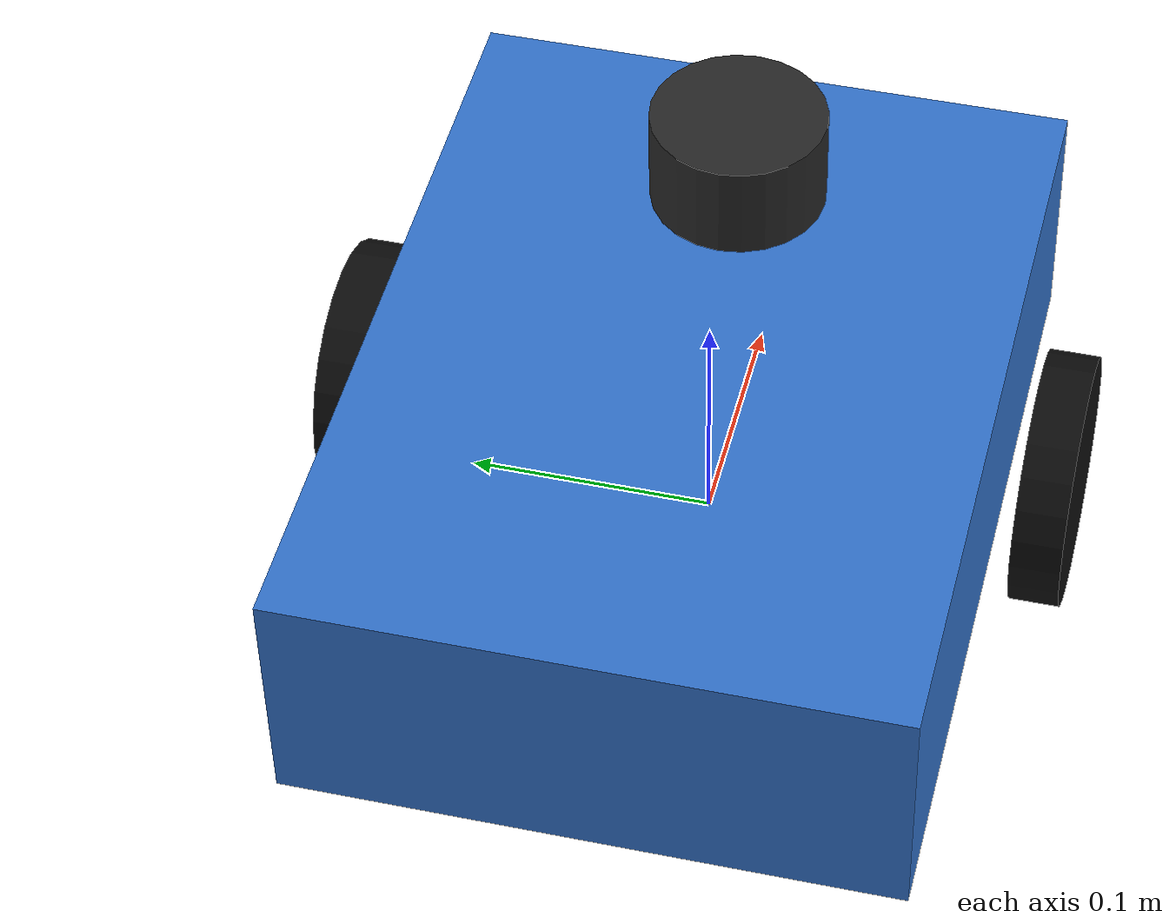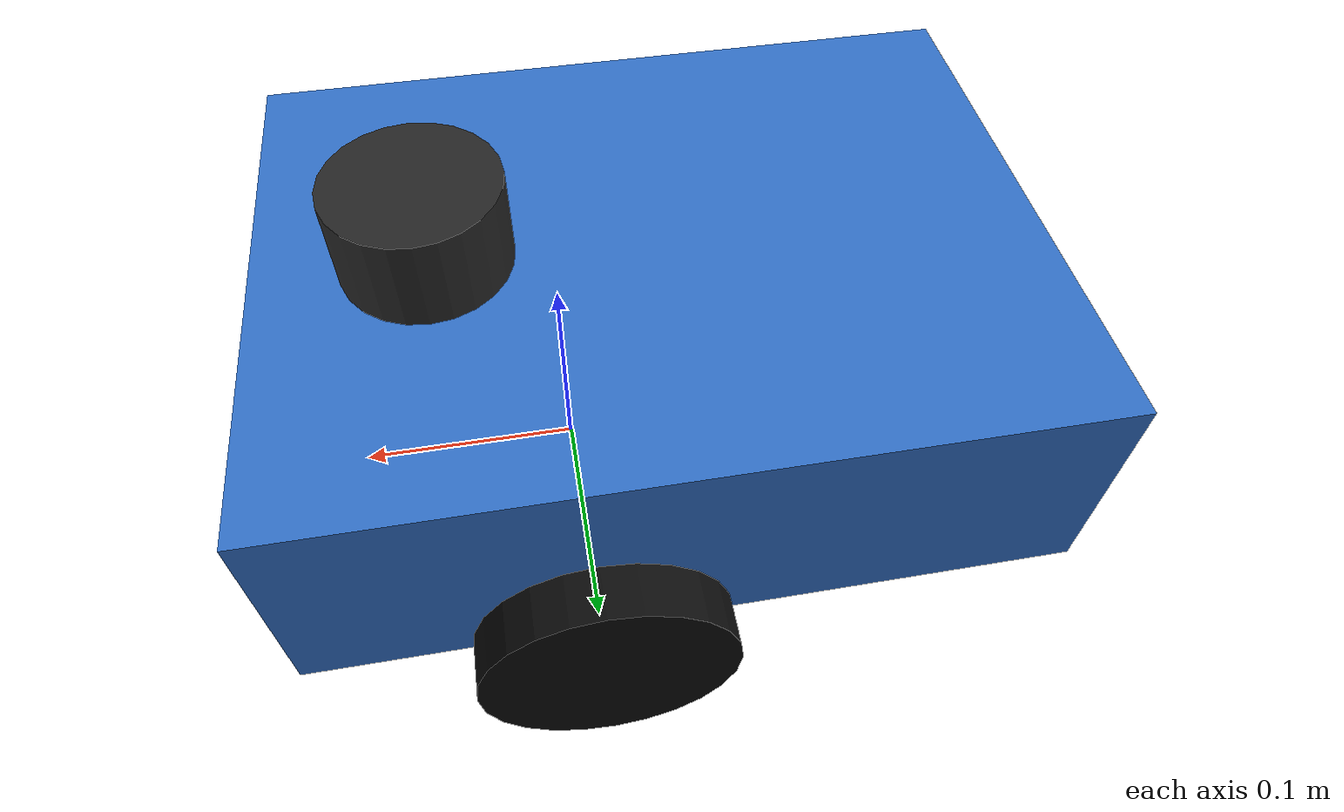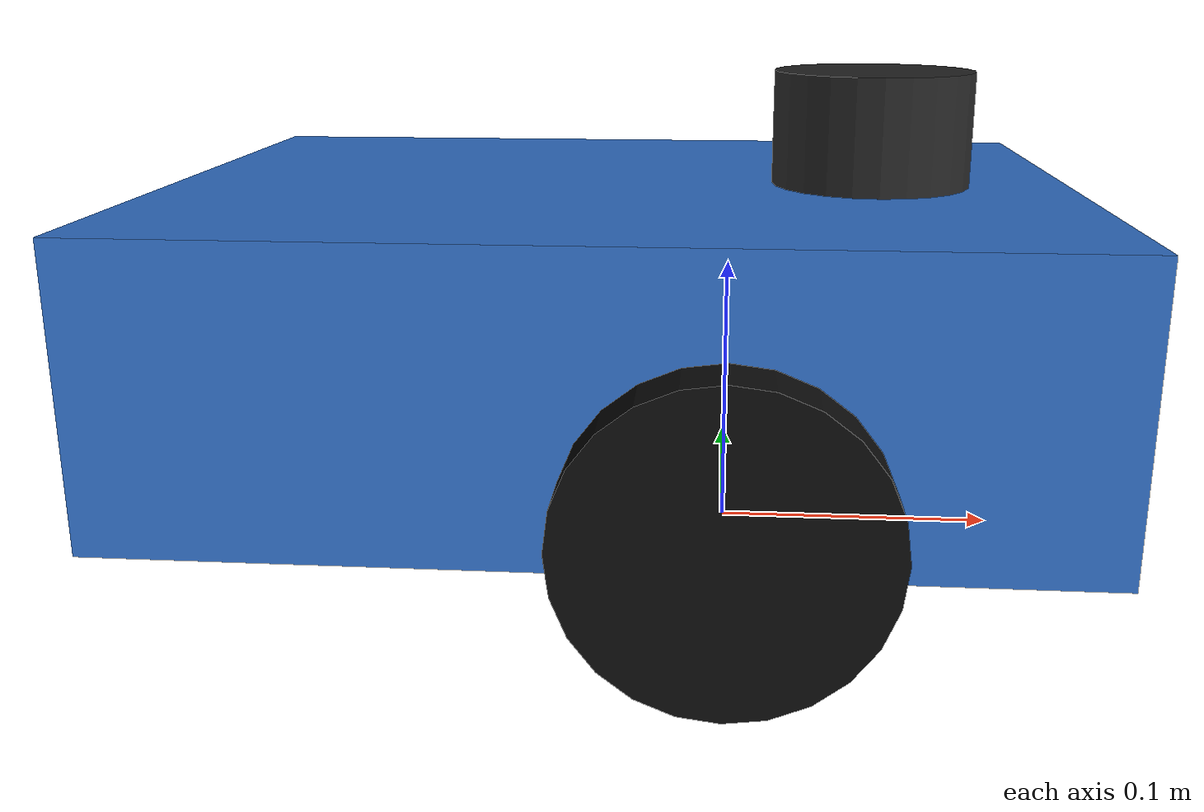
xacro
<?xml version="1.0"?>

<robot
  name="inspection_robot"
  xmlns:xacro="http://www.ros.org/wiki/xacro">

  <!-- 选择 ros2_control 后端：
       false = Mock GenericSystem
       true  = GazeboSystem -->
  <xacro:arg name="use_gazebo" default="false"/>
  <xacro:arg name="controllers_file" default=""/>

  <!-- 参数表 -->
  <xacro:include filename="robot_properties.xacro"/>

  <!-- 可复用组件宏 -->
  <xacro:include filename="base.xacro"/>
  <xacro:include filename="wheel.xacro"/>
  <xacro:include filename="caster.xacro"/>

  <xacro:include filename="sensors/laser.xacro"/>
  <xacro:include filename="sensors/imu.xacro"/>

  <!-- ros2_control 硬件与接口描述 -->
  <xacro:include filename="ros2_control.xacro"/>

  <!-- 创建底盘 -->
  <xacro:base
    length="${base_length}"
    width="${base_width}"
    height="${base_height}"
    mass="${base_mass}"
    base_link_z="${base_link_z}"
    chassis_x="${chassis_x}"
    chassis_z="${chassis_z}"
    com_x="${base_com_x}"
    com_z="${base_com_z}"/>

  <!-- 创建左轮：ROS 坐标系中 Y 正方向为左侧 -->
  <xacro:wheel
    side="left"
    radius="${wheel_radius}"
    width="${wheel_width}"
    mass="${wheel_mass}"
    x="${wheel_x}"
    y="${wheel_separation / 2.0}"
    z="${wheel_z}"/>

  <!-- 创建右轮：位于 Y 负方向 -->
  <xacro:wheel
    side="right"
    radius="${wheel_radius}"
    width="${wheel_width}"
    mass="${wheel_mass}"
    x="${wheel_x}"
    y="${-wheel_separation / 2.0}"
    z="${wheel_z}"/>

  <!-- 后部万向支撑球 -->
  <xacro:caster
    radius="${caster_radius}"
    mass="${caster_mass}"
    x="${caster_x}"
    y="${caster_y}"
    z="${caster_z}"/>

  <!-- 激光雷达 -->
  <xacro:laser
    x="${laser_x}"
    y="${laser_y}"
    z="${laser_z}"
    use_gazebo="$(arg use_gazebo)"/>

  <!-- IMU -->
  <xacro:imu
    x="${imu_x}"
    y="${imu_y}"
    z="${imu_z}"/>

  <!-- ros2_control -->
  <xacro:inspection_robot_ros2_control
    use_gazebo="$(arg use_gazebo)"
    controllers_file="$(arg controllers_file)"/>

</robot>

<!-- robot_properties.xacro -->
<robot xmlns:xacro="http://www.ros.org/wiki/xacro">

  <!-- 底盘外形尺寸 -->
  <xacro:property name="base_length" value="0.32"/>
  <xacro:property name="base_width"  value="0.24"/>
  <xacro:property name="base_height" value="0.10"/>
  <xacro:property name="base_mass"   value="4.0"/>

  <!--
    V2 坐标定义：
    base_link 位于左右驱动轮轴线中点，
        高度等于驱动轮半径。
  -->
  <xacro:property name="base_link_z" value="0.05"/>

  <!--
        底盘几何体相对于 base_link 的位置。
        底盘向后偏 4 cm；
        底部离地 3 cm，因此几何中心 z=0.03。
  -->
  <xacro:property name="chassis_x" value="-0.04"/>
  <xacro:property name="chassis_z" value="0.03"/>

  <!--
        简化的整机质心位置。
        重部件假设低位、略微偏后。
  -->
  <xacro:property name="base_com_x" value="-0.05"/>
  <xacro:property name="base_com_z" value="0.00"/>

  <!-- 左右驱动轮 -->
  <xacro:property name="wheel_radius"     value="0.05"/>
  <xacro:property name="wheel_width"      value="0.02"/>
  <xacro:property name="wheel_mass"       value="0.30"/>
  <xacro:property name="wheel_separation" value="0.28"/>

  <!-- 驱动轮轴线就是 base_link 的 X=0 -->
  <xacro:property name="wheel_x" value="0.0"/>

  <!--
    base_link 高度已经等于轮半径，
        所以轮心与 base_link 位于同一高度。
  -->
  <xacro:property
    name="wheel_z"
    value="${wheel_radius - base_link_z}"/>

  <!-- 后部支撑球 -->
  <xacro:property name="caster_radius" value="0.025"/>
  <xacro:property name="caster_mass"   value="0.05"/>

  <xacro:property name="caster_x" value="-0.13"/>
  <xacro:property name="caster_y" value="0.0"/>
  <xacro:property
    name="caster_z"
    value="${caster_radius - base_link_z}"/>

  <!-- 2D 激光雷达相对于 base_link 的安装位置 -->
  <xacro:property name="laser_x" value="0.05"/>
  <xacro:property name="laser_y" value="0.0"/>
  <xacro:property name="laser_z" value="0.10"/>

  <!-- IMU 相对于 base_link 的安装位置 -->
  <xacro:property name="imu_x" value="0.0"/>
  <xacro:property name="imu_y" value="0.0"/>
  <xacro:property name="imu_z" value="0.03"/>

</robot>

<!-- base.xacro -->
<robot xmlns:xacro="http://www.ros.org/wiki/xacro">

  <xacro:macro
    name="base"
    params="length width height mass base_link_z chassis_x chassis_z com_x com_z">

    <!--
      base_footprint 是地面投影坐标系，没有 visual、collision 和质量。
    -->
    <link name="base_footprint"/>

    <!-- 实际底盘刚体 -->
    <link name="base_link">

    <visual>
      <origin
        xyz="${chassis_x} 0 ${chassis_z}"
        rpy="0 0 0"/>

      <geometry>
        <box size="${length} ${width} ${height}"/>
      </geometry>

      <material name="base_blue">
        <color rgba="0.2 0.45 0.8 1.0"/>
      </material>
    </visual>

    <collision>
      <origin
        xyz="${chassis_x} 0 ${chassis_z}"
        rpy="0 0 0"/>

      <geometry>
        <box size="${length} ${width} ${height}"/>
      </geometry>
    </collision>

    <inertial>
      <!--
            惯性参考点设在简化后的质心。
           当前仍用长方体惯量作为第一版物理近似。
      -->
      <origin
        xyz="${com_x} 0 ${com_z}"
        rpy="0 0 0"/>

      <mass value="${mass}"/>

      <inertia
        ixx="${mass * (width * width + height * height) / 12.0}"
        ixy="0.0"
        ixz="0.0"
        iyy="${mass * (length * length + height * height) / 12.0}"
        iyz="0.0"
        izz="${mass * (length * length + width * width) / 12.0}"/>
    </inertial>

  </link>

    <!-- base_link 位于地面上方 -->
    <joint name="base_footprint_joint" type="fixed">
      <parent link="base_footprint"/>
      <child link="base_link"/>

      <origin
        xyz="0 0 ${base_link_z}"
        rpy="0 0 0"/>
    </joint>

  </xacro:macro>

</robot>

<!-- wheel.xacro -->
<robot xmlns:xacro="http://www.ros.org/wiki/xacro">

  <xacro:macro
    name="wheel"
    params="side radius width mass x y z">

    <link name="${side}_wheel_link">

      <visual>
        <!--
          URDF 圆柱默认沿 Z 轴。
          绕 X 轴旋转 90°后，轮轴沿机器人 Y 轴。
        -->
        <origin xyz="0 0 0" rpy="${pi / 2.0} 0 0"/>

        <geometry>
          <cylinder radius="${radius}" length="${width}"/>
        </geometry>

        <material name="wheel_black">
          <color rgba="0.05 0.05 0.05 1.0"/>
        </material>
      </visual>

      <collision>
        <origin xyz="0 0 0" rpy="${pi / 2.0} 0 0"/>

        <geometry>
          <cylinder radius="${radius}" length="${width}"/>
        </geometry>
      </collision>

      <!--
        实心圆柱的惯性。
        当前圆柱轴沿 Y 轴，因此 Iyy 是绕轮轴的惯量。
      -->
      <inertial>
        <mass value="${mass}"/>

        <inertia
          ixx="${mass * (3.0 * radius * radius + width * width) / 12.0}"
          ixy="0.0"
          ixz="0.0"
          iyy="${mass * radius * radius / 2.0}"
          iyz="0.0"
          izz="${mass * (3.0 * radius * radius + width * width) / 12.0}"/>
      </inertial>

    </link>

    <joint name="${side}_wheel_joint" type="continuous">
      <parent link="base_link"/>
      <child link="${side}_wheel_link"/>

      <origin
        xyz="${x} ${y} ${z}"
        rpy="0 0 0"/>

      <!-- 轮子绕机器人 Y 轴转动 -->
      <axis xyz="0 1 0"/>
    </joint>

  </xacro:macro>

</robot>

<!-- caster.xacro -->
<robot xmlns:xacro="http://www.ros.org/wiki/xacro">

  <xacro:macro
    name="caster"
    params="radius mass x y z">

    <link name="caster_link">

      <visual>
        <geometry>
          <sphere radius="${radius}"/>
        </geometry>

        <material name="caster_gray">
          <color rgba="0.3 0.3 0.3 1.0"/>
        </material>
      </visual>

      <collision>
        <geometry>
          <sphere radius="${radius}"/>
        </geometry>
      </collision>

      <inertial>
        <mass value="${mass}"/>

        <inertia
          ixx="${2.0 * mass * radius * radius / 5.0}"
          ixy="0.0"
          ixz="0.0"
          iyy="${2.0 * mass * radius * radius / 5.0}"
          iyz="0.0"
          izz="${2.0 * mass * radius * radius / 5.0}"/>
      </inertial>

    </link>

    <joint name="caster_joint" type="fixed">
      <parent link="base_link"/>
      <child link="caster_link"/>

      <origin
        xyz="${x} ${y} ${z}"
        rpy="0 0 0"/>
    </joint>

    <!--
      球形支撑轮本身不驱动。
      降低地面摩擦，减少它对差速转向的阻碍。
    -->
    <gazebo reference="caster_link">
      <mu1>0.01</mu1>
      <mu2>0.01</mu2>
    </gazebo>

  </xacro:macro>

</robot>

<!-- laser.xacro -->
<robot xmlns:xacro="http://www.ros.org/wiki/xacro">

  <xacro:macro name="laser" params="x y z use_gazebo">

    <link name="laser_link">

      <visual>
        <geometry>
          <cylinder radius="0.035" length="0.04"/>
        </geometry>

        <material name="laser_dark">
          <color rgba="0.15 0.15 0.15 1.0"/>
        </material>
      </visual>

      <collision>
        <geometry>
          <cylinder radius="0.035" length="0.04"/>
        </geometry>
      </collision>

    </link>

    <joint name="laser_joint" type="fixed">
      <parent link="base_link"/>
      <child link="laser_link"/>

      <origin
        xyz="${x} ${y} ${z}"
        rpy="0 0 0"/>
    </joint>

    <xacro:if value="${use_gazebo}">

      <gazebo reference="laser_link">

        <sensor name="laser_sensor" type="ray">

          <always_on>true</always_on>
          <visualize>true</visualize>
          <update_rate>10.0</update_rate>

          <ray>

            <scan>
              <horizontal>
                <samples>360</samples>
                <resolution>1</resolution>

                <min_angle>-3.14159265</min_angle>
                <max_angle>3.14159265</max_angle>
              </horizontal>
            </scan>

            <range>
              <min>0.12</min>
              <max>8.0</max>
              <resolution>0.01</resolution>
            </range>

            <noise>
              <type>gaussian</type>
              <mean>0.0</mean>
              <stddev>0.01</stddev>
            </noise>

          </ray>

          <plugin
            name="gazebo_ros_ray_sensor"
            filename="libgazebo_ros_ray_sensor.so">

            <ros>
              <remapping>~/out:=/scan</remapping>
            </ros>

            <output_type>sensor_msgs/LaserScan</output_type>
            <frame_name>laser_link</frame_name>

          </plugin>

        </sensor>

      </gazebo>

    </xacro:if>

  </xacro:macro>

</robot>

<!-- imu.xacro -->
<robot xmlns:xacro="http://www.ros.org/wiki/xacro">

  <xacro:macro name="imu" params="x y z">

    <!--
      IMU 在真实机器人中通常很小，
      当前用简单盒体表示安装位置。
    -->
    <link name="imu_link">

      <visual>
        <geometry>
          <box size="0.04 0.03 0.01"/>
        </geometry>

        <material name="imu_green">
          <color rgba="0.1 0.6 0.2 1.0"/>
        </material>
      </visual>

    </link>

    <joint name="imu_joint" type="fixed">
      <parent link="base_link"/>
      <child link="imu_link"/>

      <origin
        xyz="${x} ${y} ${z}"
        rpy="0 0 0"/>
    </joint>

  </xacro:macro>

</robot>
